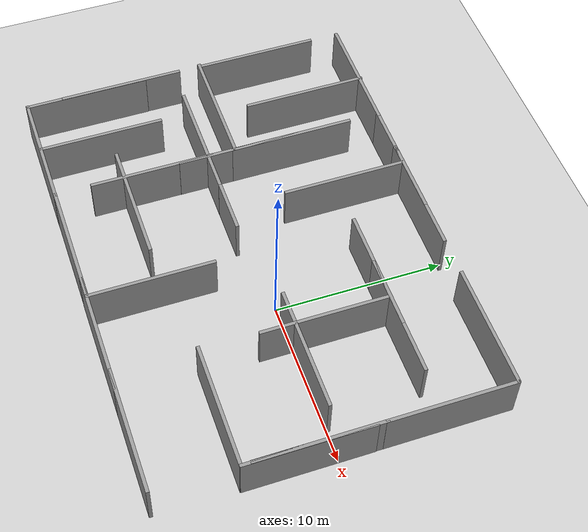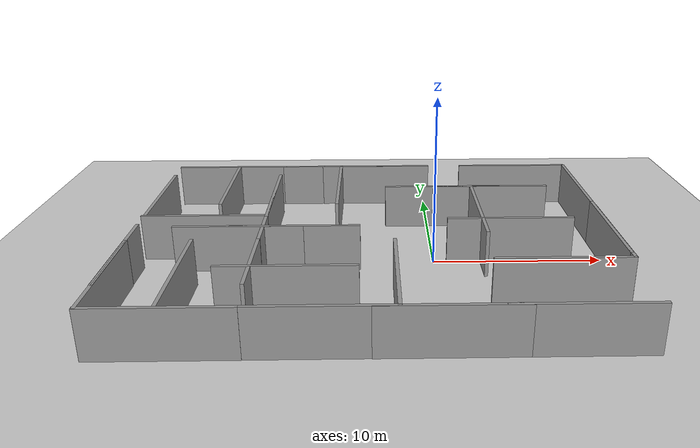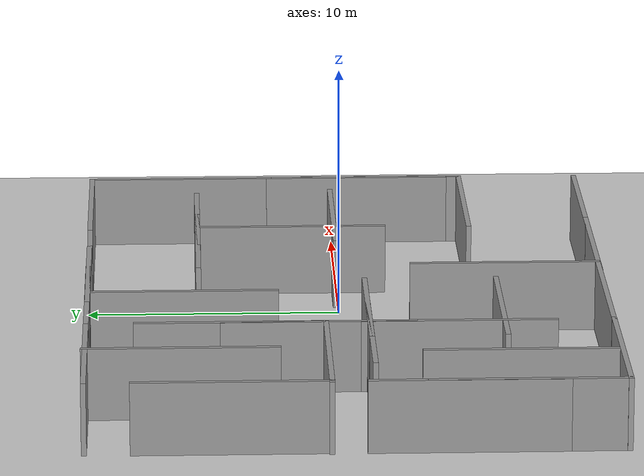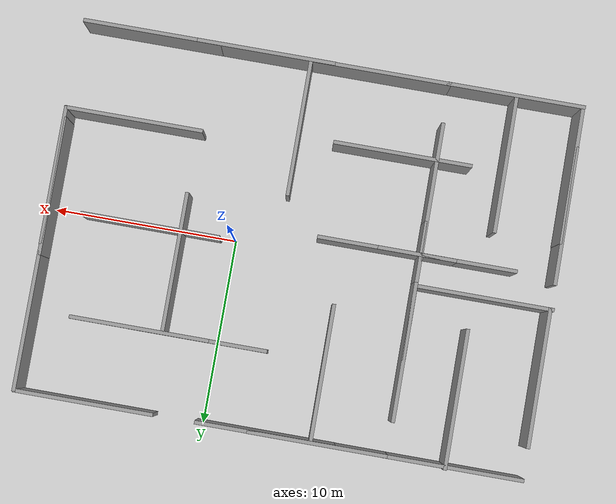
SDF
<sdf version="1.7">
 <world name="default">
  <light name="sun" type="directional">
   <pose>0 0 10 0 -0 0</pose>
   <diffuse>0.8 0.8 0.8 1</diffuse>
   <specular>0.2 0.2 0.2 1</specular>
   <attenuation>
    <range>1000</range>
    <constant>0.9</constant>
    <linear>0.01</linear>
    <quadratic>0.001</quadratic>
   </attenuation>
   <direction>-0.5 0.1 -0.9</direction>
   <spot><inner_angle>0</inner_angle><outer_angle>0</outer_angle><falloff>0</falloff></spot>
  </light>
  <model name="ground_plane">
   <static>1</static>
   <link name="link">
    <collision name="collision">
     <geometry><plane><normal>0 0 1</normal><size>100 100</size></plane></geometry>
     <surface>
      <contact><collide_bitmask>65535</collide_bitmask></contact>
      <friction><ode><mu>100</mu><mu2>50</mu2></ode></friction>
     </surface>
    </collision>
    <visual name="visual">
     <cast_shadows>0</cast_shadows>
     <geometry><plane><normal>0 0 1</normal><size>100 100</size></plane></geometry>
     <material>
      <script><uri>file://media/materials/scripts/gazebo.material</uri><name>Gazebo/Grey</name></script>
     </material>
    </visual>
   </link>
  </model>
  <gravity>0 0 -9.8</gravity>
  <magnetic_field>6e-06 2.3e-05 -4.2e-05</magnetic_field>
  <atmosphere type="adiabatic"/>
  <physics type="ode">
   <max_step_size>0.001</max_step_size>
   <real_time_factor>1</real_time_factor>
   <real_time_update_rate>1000</real_time_update_rate>
  </physics>
  <scene><ambient>0.4 0.4 0.4 1</ambient><background>0.7 0.7 0.7 1</background><shadows>1</shadows></scene>
  <spherical_coordinates>
   <surface_model>EARTH_WGS84</surface_model>
   <latitude_deg>0</latitude_deg>
   <longitude_deg>0</longitude_deg>
   <elevation>0</elevation>
   <heading_deg>0</heading_deg>
  </spherical_coordinates>
  <model name="grey_wall_clone_0_clone">
   <static>1</static>
   <link name="link">
    <pose>0 0 1.4 0 -0 0</pose>
    <collision name="collision"><geometry><box><size>7.5 0.2 2.8</size></box></geometry></collision>
    <visual name="visual">
     <cast_shadows>0</cast_shadows>
     <geometry><box><size>7.5 0.2 2.8</size></box></geometry>
     <material>
      <script>
       <uri>model://grey_wall/materials/scripts</uri>
       <uri>model://grey_wall/materials/textures</uri>
       <name>vrc/grey_wall</name>
      </script>
     </material>
    </visual>
   </link>
   <pose>-6.23899 -10.1165 0 0 -0 0</pose>
  </model>
  <model name="grey_wall_clone_0_clone_1">
   <static>1</static>
   <link name="link">
    <pose>0 0 1.4 0 -0 0</pose>
    <collision name="collision"><geometry><box><size>7.5 0.2 2.8</size></box></geometry></collision>
    <visual name="visual">
     <cast_shadows>0</cast_shadows>
     <geometry><box><size>7.5 0.2 2.8</size></box></geometry>
     <material>
      <script>
       <uri>model://grey_wall/materials/scripts</uri>
       <uri>model://grey_wall/materials/textures</uri>
       <name>vrc/grey_wall</name>
      </script>
     </material>
    </visual>
   </link>
   <pose>6.26067 -10.1305 0 0 -0 0</pose>
  </model>
  <model name="grey_wall_clone_0_clone_2">
   <static>1</static>
   <link name="link">
    <pose>0 0 1.4 0 -0 0</pose>
    <collision name="collision"><geometry><box><size>7.5 0.2 2.8</size></box></geometry></collision>
    <visual name="visual">
     <cast_shadows>0</cast_shadows>
     <geometry><box><size>7.5 0.2 2.8</size></box></geometry>
     <material>
      <script>
       <uri>model://grey_wall/materials/scripts</uri>
       <uri>model://grey_wall/materials/textures</uri>
       <name>vrc/grey_wall</name>
      </script>
     </material>
    </visual>
   </link>
   <pose>-9.9339 1.10338 0 0 0 -1.56778</pose>
  </model>
  <model name="grey_wall_clone_0_clone_2_clone">
   <static>1</static>
   <link name="link">
    <pose>0 0 1.4 0 -0 0</pose>
    <collision name="collision"><geometry><box><size>7.5 0.2 2.8</size></box></geometry></collision>
    <visual name="visual">
     <cast_shadows>0</cast_shadows>
     <geometry><box><size>7.5 0.2 2.8</size></box></geometry>
     <material>
      <script>
       <uri>model://grey_wall/materials/scripts</uri>
       <uri>model://grey_wall/materials/textures</uri>
       <name>vrc/grey_wall</name>
      </script>
     </material>
    </visual>
   </link>
   <pose>-9.94083 4.39123 0 0 0 -1.56778</pose>
  </model>
  <model name="grey_wall_clone_0_clone_clone">
   <static>1</static>
   <link name="link">
    <pose>0 0 1.4 0 -0 0</pose>
    <collision name="collision"><geometry><box><size>7.5 0.2 2.8</size></box></geometry></collision>
    <visual name="visual">
     <cast_shadows>0</cast_shadows>
     <geometry><box><size>7.5 0.2 2.8</size></box></geometry>
     <material>
      <script>
       <uri>model://grey_wall/materials/scripts</uri>
       <uri>model://grey_wall/materials/textures</uri>
       <name>vrc/grey_wall</name>
      </script>
     </material>
    </visual>
   </link>
   <pose>-6.21837 9.93561 0 0 -0 0</pose>
  </model>
  <model name="grey_wall_clone_0_clone_clone_clone">
   <static>1</static>
   <link name="link">
    <pose>0 0 1.4 0 -0 0</pose>
    <collision name="collision"><geometry><box><size>7.5 0.2 2.8</size></box></geometry></collision>
    <visual name="visual">
     <cast_shadows>0</cast_shadows>
     <geometry><box><size>7.5 0.2 2.8</size></box></geometry>
     <material>
      <script>
       <uri>model://grey_wall/materials/scripts</uri>
       <uri>model://grey_wall/materials/textures</uri>
       <name>vrc/grey_wall</name>
      </script>
     </material>
    </visual>
   </link>
   <pose>-3.42448 9.92592 0 0 -0 0</pose>
  </model>
  <model name="grey_wall_clone_0_clone_clone_clone_0">
   <static>1</static>
   <link name="link">
    <pose>0 0 1.4 0 -0 0</pose>
    <collision name="collision"><geometry><box><size>7.5 0.2 2.8</size></box></geometry></collision>
    <visual name="visual">
     <cast_shadows>0</cast_shadows>
     <geometry><box><size>7.5 0.2 2.8</size></box></geometry>
     <material>
      <script>
       <uri>model://grey_wall/materials/scripts</uri>
       <uri>model://grey_wall/materials/textures</uri>
       <name>vrc/grey_wall</name>
      </script>
     </material>
    </visual>
   </link>
   <pose>6.28767 9.93579 0 0 -0 0</pose>
  </model>
  <model name="grey_wall_clone_0_clone_2_clone_clone">
   <static>1</static>
   <link name="link">
    <pose>0 0 1.4 0 -0 0</pose>
    <collision name="collision"><geometry><box><size>7.5 0.2 2.8</size></box></geometry></collision>
    <visual name="visual">
     <cast_shadows>0</cast_shadows>
     <geometry><box><size>7.5 0.2 2.8</size></box></geometry>
     <material>
      <script>
       <uri>model://grey_wall/materials/scripts</uri>
       <uri>model://grey_wall/materials/textures</uri>
       <name>vrc/grey_wall</name>
      </script>
     </material>
    </visual>
   </link>
   <pose>10.0036 6.23885 0 0 0 -1.56778</pose>
  </model>
  <model name="grey_wall_clone_0_clone_2_clone_clone_0">
   <static>1</static>
   <link name="link">
    <pose>0 0 1.4 0 -0 0</pose>
    <collision name="collision"><geometry><box><size>7.5 0.2 2.8</size></box></geometry></collision>
    <visual name="visual">
     <cast_shadows>0</cast_shadows>
     <geometry><box><size>7.5 0.2 2.8</size></box></geometry>
     <material>
      <script>
       <uri>model://grey_wall/materials/scripts</uri>
       <uri>model://grey_wall/materials/textures</uri>
       <name>vrc/grey_wall</name>
      </script>
     </material>
    </visual>
   </link>
   <pose>10.0217 -1.06056 0 0 0 -1.56778</pose>
  </model>
  <model name="grey_wall_clone_0_clone_2_clone_clone_1">
   <static>1</static>
   <link name="link">
    <pose>0 0 1.4 0 -0 0</pose>
    <collision name="collision"><geometry><box><size>7.5 0.2 2.8</size></box></geometry></collision>
    <visual name="visual">
     <cast_shadows>0</cast_shadows>
     <geometry><box><size>7.5 0.2 2.8</size></box></geometry>
     <material>
      <script>
       <uri>model://grey_wall/materials/scripts</uri>
       <uri>model://grey_wall/materials/textures</uri>
       <name>vrc/grey_wall</name>
      </script>
     </material>
    </visual>
   </link>
   <pose>10.0408 -1.6479 0 0 0 -1.56778</pose>
  </model>
  <model name="grey_wall_clone_0_clone_2_clone_0">
   <static>1</static>
   <link name="link">
    <pose>0 0 1.4 0 -0 0</pose>
    <collision name="collision"><geometry><box><size>7.5 0.2 2.8</size></box></geometry></collision>
    <visual name="visual">
     <cast_shadows>0</cast_shadows>
     <geometry><box><size>7.5 0.2 2.8</size></box></geometry>
     <material>
      <script>
       <uri>model://grey_wall/materials/scripts</uri>
       <uri>model://grey_wall/materials/textures</uri>
       <name>vrc/grey_wall</name>
      </script>
     </material>
    </visual>
   </link>
   <pose>-9.92652 -4.24662 0 0 0 -1.56778</pose>
  </model>
  <model name="grey_wall_clone_0_clone_2_clone_1">
   <static>1</static>
   <link name="link">
    <pose>0 0 1.4 0 -0 0</pose>
    <collision name="collision"><geometry><box><size>7.5 0.2 2.8</size></box></geometry></collision>
    <visual name="visual">
     <cast_shadows>0</cast_shadows>
     <geometry><box><size>7.5 0.2 2.8</size></box></geometry>
     <material>
      <script>
       <uri>model://grey_wall/materials/scripts</uri>
       <uri>model://grey_wall/materials/textures</uri>
       <name>vrc/grey_wall</name>
      </script>
     </material>
    </visual>
   </link>
   <pose>-2.39657 -6.45305 0 0 0 -1.56778</pose>
  </model>
  <model name="grey_wall_clone_0_clone_1_clone">
   <static>1</static>
   <link name="link">
    <pose>0 0 1.4 0 -0 0</pose>
    <collision name="collision"><geometry><box><size>7.5 0.2 2.8</size></box></geometry></collision>
    <visual name="visual">
     <cast_shadows>0</cast_shadows>
     <geometry><box><size>7.5 0.2 2.8</size></box></geometry>
     <material>
      <script>
       <uri>model://grey_wall/materials/scripts</uri>
       <uri>model://grey_wall/materials/textures</uri>
       <name>vrc/grey_wall</name>
      </script>
     </material>
    </visual>
   </link>
   <pose>0.061432 -10.1322 0 0 -0 0</pose>
  </model>
  <model name="grey_wall_clone_0_clone_0_clone_clone">
   <static>1</static>
   <link name="link">
    <pose>0 0 1.4 0 -0 0</pose>
    <collision name="collision"><geometry><box><size>7.5 0.2 2.8</size></box></geometry></collision>
    <visual name="visual">
     <cast_shadows>0</cast_shadows>
     <geometry><box><size>7.5 0.2 2.8</size></box></geometry>
     <material>
      <script>
       <uri>model://grey_wall/materials/scripts</uri>
       <uri>model://grey_wall/materials/textures</uri>
       <name>vrc/grey_wall</name>
      </script>
     </material>
    </visual>
   </link>
   <pose>4.08549 5.6116 0 0 -0 0</pose>
  </model>
  <model name="grey_wall_clone_0_clone_0_clone_clone_clone">
   <static>1</static>
   <link name="link">
    <pose>0 0 1.4 0 -0 0</pose>
    <collision name="collision"><geometry><box><size>7.5 0.2 2.8</size></box></geometry></collision>
    <visual name="visual">
     <cast_shadows>0</cast_shadows>
     <geometry><box><size>7.5 0.2 2.8</size></box></geometry>
     <material>
      <script>
       <uri>model://grey_wall/materials/scripts</uri>
       <uri>model://grey_wall/materials/textures</uri>
       <name>vrc/grey_wall</name>
      </script>
     </material>
    </visual>
   </link>
   <pose>6.38811 -5.32178 0 0 -0 0</pose>
  </model>
  <model name="grey_wall_clone_0_clone_2_clone_1_clone">
   <static>1</static>
   <link name="link">
    <pose>0 0 1.4 0 -0 0</pose>
    <collision name="collision"><geometry><box><size>7.5 0.2 2.8</size></box></geometry></collision>
    <visual name="visual">
     <cast_shadows>0</cast_shadows>
     <geometry><box><size>7.5 0.2 2.8</size></box></geometry>
     <material>
      <script>
       <uri>model://grey_wall/materials/scripts</uri>
       <uri>model://grey_wall/materials/textures</uri>
       <name>vrc/grey_wall</name>
      </script>
     </material>
    </visual>
   </link>
   <pose>2.85247 1.7937 0 0 0 -1.56778</pose>
  </model>
  <model name="grey_wall_clone_0_clone_0_clone_clone_clone_0">
   <static>1</static>
   <link name="link">
    <pose>0 0 1.4 0 -0 0</pose>
    <collision name="collision"><geometry><box><size>7.5 0.2 2.8</size></box></geometry></collision>
    <visual name="visual">
     <cast_shadows>0</cast_shadows>
     <geometry><box><size>7.5 0.2 2.8</size></box></geometry>
     <material>
      <script>
       <uri>model://grey_wall/materials/scripts</uri>
       <uri>model://grey_wall/materials/textures</uri>
       <name>vrc/grey_wall</name>
      </script>
     </material>
    </visual>
   </link>
   <pose>0.955277 5.61819 0 0 -0 0</pose>
  </model>
  <model name="grey_wall_clone_0_clone_0_clone_clone_clone_1">
   <static>1</static>
   <link name="link">
    <pose>0 0 1.4 0 -0 0</pose>
    <collision name="collision"><geometry><box><size>7.5 0.2 2.8</size></box></geometry></collision>
    <visual name="visual">
     <cast_shadows>0</cast_shadows>
     <geometry><box><size>7.5 0.2 2.8</size></box></geometry>
     <material>
      <script>
       <uri>model://grey_wall/materials/scripts</uri>
       <uri>model://grey_wall/materials/textures</uri>
       <name>vrc/grey_wall</name>
      </script>
     </material>
    </visual>
   </link>
   <pose>4.50731 0.109156 0 0 -0 0</pose>
  </model>
  <model name="grey_wall_clone_0_clone_2_clone_1_clone_clone">
   <static>1</static>
   <link name="link">
    <pose>0 0 1.4 0 -0 0</pose>
    <collision name="collision"><geometry><box><size>7.5 0.2 2.8</size></box></geometry></collision>
    <visual name="visual">
     <cast_shadows>0</cast_shadows>
     <geometry><box><size>7.5 0.2 2.8</size></box></geometry>
     <material>
      <script>
       <uri>model://grey_wall/materials/scripts</uri>
       <uri>model://grey_wall/materials/textures</uri>
       <name>vrc/grey_wall</name>
      </script>
     </material>
    </visual>
   </link>
   <pose>-5.85725 6.28668 0 0 0 -1.56778</pose>
  </model>
  <model name="grey_wall_clone_0_clone_clone_clone_1">
   <static>1</static>
   <link name="link">
    <pose>0 0 1.4 0 -0 0</pose>
    <collision name="collision"><geometry><box><size>7.5 0.2 2.8</size></box></geometry></collision>
    <visual name="visual">
     <cast_shadows>0</cast_shadows>
     <geometry><box><size>7.5 0.2 2.8</size></box></geometry>
     <material>
      <script>
       <uri>model://grey_wall/materials/scripts</uri>
       <uri>model://grey_wall/materials/textures</uri>
       <name>vrc/grey_wall</name>
      </script>
     </material>
    </visual>
   </link>
   <pose>-13.4889 9.94004 0 0 -0 0</pose>
  </model>
  <model name="grey_wall_clone_0_clone_2_clone_clone_2">
   <static>1</static>
   <link name="link">
    <pose>0 0 1.4 0 -0 0</pose>
    <collision name="collision"><geometry><box><size>7.5 0.2 2.8</size></box></geometry></collision>
    <visual name="visual">
     <cast_shadows>0</cast_shadows>
     <geometry><box><size>7.5 0.2 2.8</size></box></geometry>
     <material>
      <script>
       <uri>model://grey_wall/materials/scripts</uri>
       <uri>model://grey_wall/materials/textures</uri>
       <name>vrc/grey_wall</name>
      </script>
     </material>
    </visual>
   </link>
   <pose>-17.1566 4.50031 0 0 0 -1.56778</pose>
  </model>
  <model name="grey_wall_clone_0_clone_clone_clone_1_clone">
   <static>1</static>
   <link name="link">
    <pose>0 0 1.4 0 -0 0</pose>
    <collision name="collision"><geometry><box><size>7.5 0.2 2.8</size></box></geometry></collision>
    <visual name="visual">
     <cast_shadows>0</cast_shadows>
     <geometry><box><size>7.5 0.2 2.8</size></box></geometry>
     <material>
      <script>
       <uri>model://grey_wall/materials/scripts</uri>
       <uri>model://grey_wall/materials/textures</uri>
       <name>vrc/grey_wall</name>
      </script>
     </material>
    </visual>
   </link>
   <pose>-13.6072 0.8359 0 0 -0 0</pose>
  </model>
  <model name="grey_wall_clone_0_clone_0_clone_clone_clone_1_clone">
   <static>1</static>
   <link name="link">
    <pose>0 0 1.4 0 -0 0</pose>
    <collision name="collision"><geometry><box><size>7.5 0.2 2.8</size></box></geometry></collision>
    <visual name="visual">
     <cast_shadows>0</cast_shadows>
     <geometry><box><size>7.5 0.2 2.8</size></box></geometry>
     <material>
      <script>
       <uri>model://grey_wall/materials/scripts</uri>
       <uri>model://grey_wall/materials/textures</uri>
       <name>vrc/grey_wall</name>
      </script>
     </material>
    </visual>
   </link>
   <pose>-11.3544 -0.838924 0 0 -0 0</pose>
  </model>
  <model name="grey_wall_clone_0_clone_0_clone_clone_clone_1_clone_0">
   <static>1</static>
   <link name="link">
    <pose>0 0 1.4 0 -0 0</pose>
    <collision name="collision"><geometry><box><size>7.5 0.2 2.8</size></box></geometry></collision>
    <visual name="visual">
     <cast_shadows>0</cast_shadows>
     <geometry><box><size>7.5 0.2 2.8</size></box></geometry>
     <material>
      <script>
       <uri>model://grey_wall/materials/scripts</uri>
       <uri>model://grey_wall/materials/textures</uri>
       <name>vrc/grey_wall</name>
      </script>
     </material>
    </visual>
   </link>
   <pose>-8.06603 -5.9683 0 0 -0 0</pose>
  </model>
  <model name="grey_wall_clone_0_clone_2_clone_1_clone_0_clone">
   <static>1</static>
   <link name="link">
    <pose>0 0 1.4 0 -0 0</pose>
    <collision name="collision"><geometry><box><size>7.5 0.2 2.8</size></box></geometry></collision>
    <visual name="visual">
     <cast_shadows>0</cast_shadows>
     <geometry><box><size>7.5 0.2 2.8</size></box></geometry>
     <material>
      <script>
       <uri>model://grey_wall/materials/scripts</uri>
       <uri>model://grey_wall/materials/textures</uri>
       <name>vrc/grey_wall</name>
      </script>
     </material>
    </visual>
   </link>
   <pose>-17.1615 -4.21716 0 0 0 -1.56778</pose>
  </model>
  <model name="grey_wall_clone_0_clone_clone_clone_1_clone_clone">
   <static>1</static>
   <link name="link">
    <pose>0 0 1.4 0 -0 0</pose>
    <collision name="collision"><geometry><box><size>7.5 0.2 2.8</size></box></geometry></collision>
    <visual name="visual">
     <cast_shadows>0</cast_shadows>
     <geometry><box><size>7.5 0.2 2.8</size></box></geometry>
     <material>
      <script>
       <uri>model://grey_wall/materials/scripts</uri>
       <uri>model://grey_wall/materials/textures</uri>
       <name>vrc/grey_wall</name>
      </script>
     </material>
    </visual>
   </link>
   <pose>-13.4984 -10.1238 0 0 -0 0</pose>
  </model>
  <model name="grey_wall_clone_0_clone_2_clone_1_clone_0_clone_clone">
   <static>1</static>
   <link name="link">
    <pose>0 0 1.4 0 -0 0</pose>
    <collision name="collision"><geometry><box><size>7.5 0.2 2.8</size></box></geometry></collision>
    <visual name="visual">
     <cast_shadows>0</cast_shadows>
     <geometry><box><size>7.5 0.2 2.8</size></box></geometry>
     <material>
      <script>
       <uri>model://grey_wall/materials/scripts</uri>
       <uri>model://grey_wall/materials/textures</uri>
       <name>vrc/grey_wall</name>
      </script>
     </material>
    </visual>
   </link>
   <pose>-17.1373 -6.4281 0 0 0 -1.56778</pose>
  </model>
  <model name="grey_wall_clone_0_clone_2_clone_1_clone_0_clone_0">
   <static>1</static>
   <link name="link">
    <pose>0 0 1.4 0 -0 0</pose>
    <collision name="collision"><geometry><box><size>7.5 0.2 2.8</size></box></geometry></collision>
    <visual name="visual">
     <cast_shadows>0</cast_shadows>
     <geometry><box><size>7.5 0.2 2.8</size></box></geometry>
     <material>
      <script>
       <uri>model://grey_wall/materials/scripts</uri>
       <uri>model://grey_wall/materials/textures</uri>
       <name>vrc/grey_wall</name>
      </script>
     </material>
    </visual>
   </link>
   <pose>-13.0468 6.35829 0 0 0 -1.56778</pose>
  </model>
  <model name="grey_wall_clone_0_clone_0_clone_clone_clone_1_clone_clone">
   <static>1</static>
   <link name="link">
    <pose>0 0 1.4 0 -0 0</pose>
    <collision name="collision"><geometry><box><size>7.5 0.2 2.8</size></box></geometry></collision>
    <visual name="visual">
     <cast_shadows>0</cast_shadows>
     <geometry><box><size>7.5 0.2 2.8</size></box></geometry>
     <material>
      <script>
       <uri>model://grey_wall/materials/scripts</uri>
       <uri>model://grey_wall/materials/textures</uri>
       <name>vrc/grey_wall</name>
      </script>
     </material>
    </visual>
   </link>
   <pose>-8.09863 -0.836594 0 0 -0 0</pose>
  </model>
  <model name="grey_wall_clone_0_clone_2_clone_1_clone_0_clone_clone_clone">
   <static>1</static>
   <link name="link">
    <pose>0 0 1.4 0 -0 0</pose>
    <collision name="collision"><geometry><box><size>7.5 0.2 2.8</size></box></geometry></collision>
    <visual name="visual">
     <cast_shadows>0</cast_shadows>
     <geometry><box><size>7.5 0.2 2.8</size></box></geometry>
     <material>
      <script>
       <uri>model://grey_wall/materials/scripts</uri>
       <uri>model://grey_wall/materials/textures</uri>
       <name>vrc/grey_wall</name>
      </script>
     </material>
    </visual>
   </link>
   <pose>-13.5564 -6.40893 0 0 0 -1.56778</pose>
  </model>
  <plugin name="gazebo_occupancy_map" filename="libgazebo_2Dmap_plugin.so">
   <map_resolution>0.1</map_resolution>
   <map_height>0.3</map_height>
   <map_size_x>50</map_size_x>
   <map_size_y>50</map_size_y>
   <init_robot_x>0</init_robot_x>
   <init_robot_y>0</init_robot_y>
  </plugin>
 </world>
</sdf>
